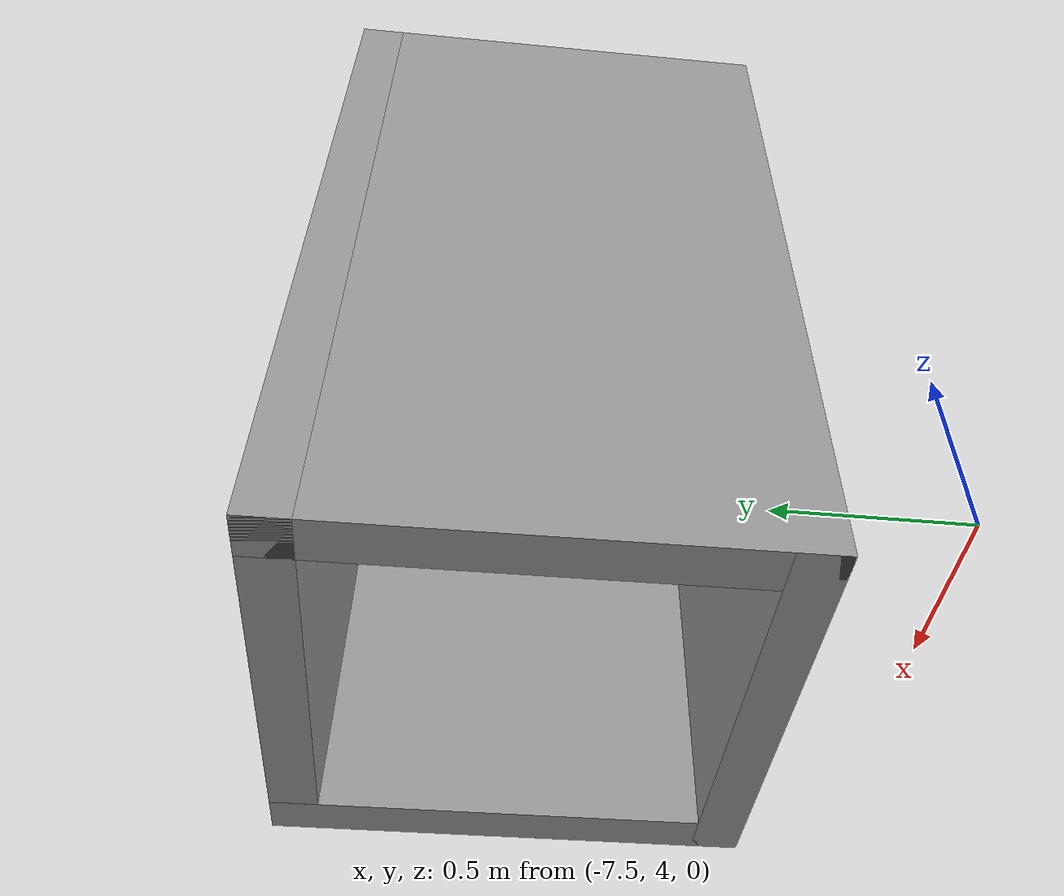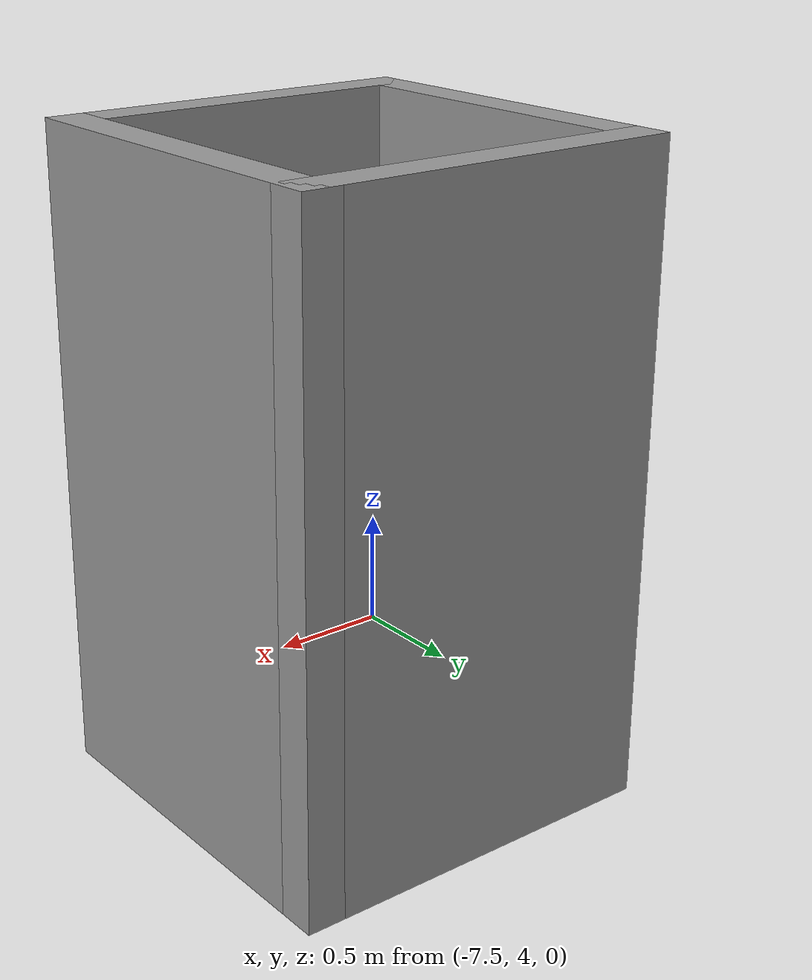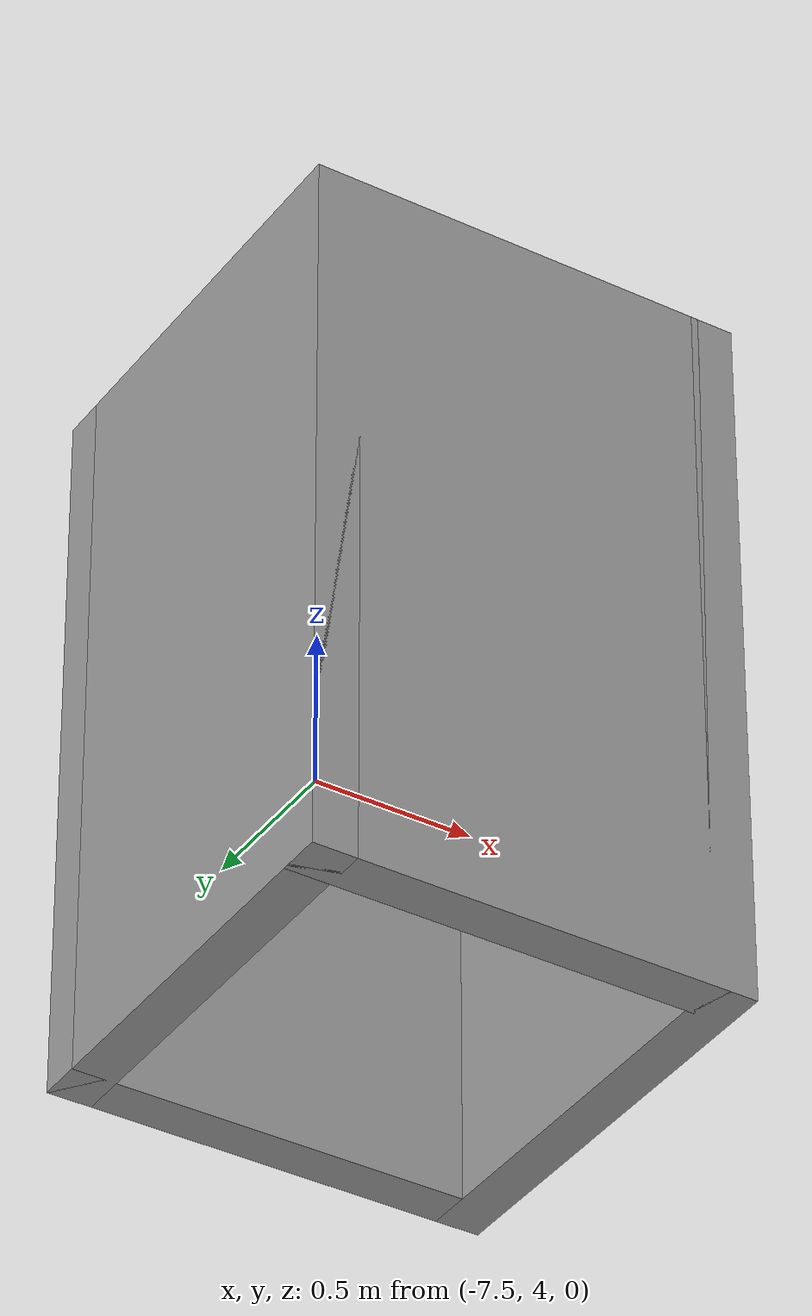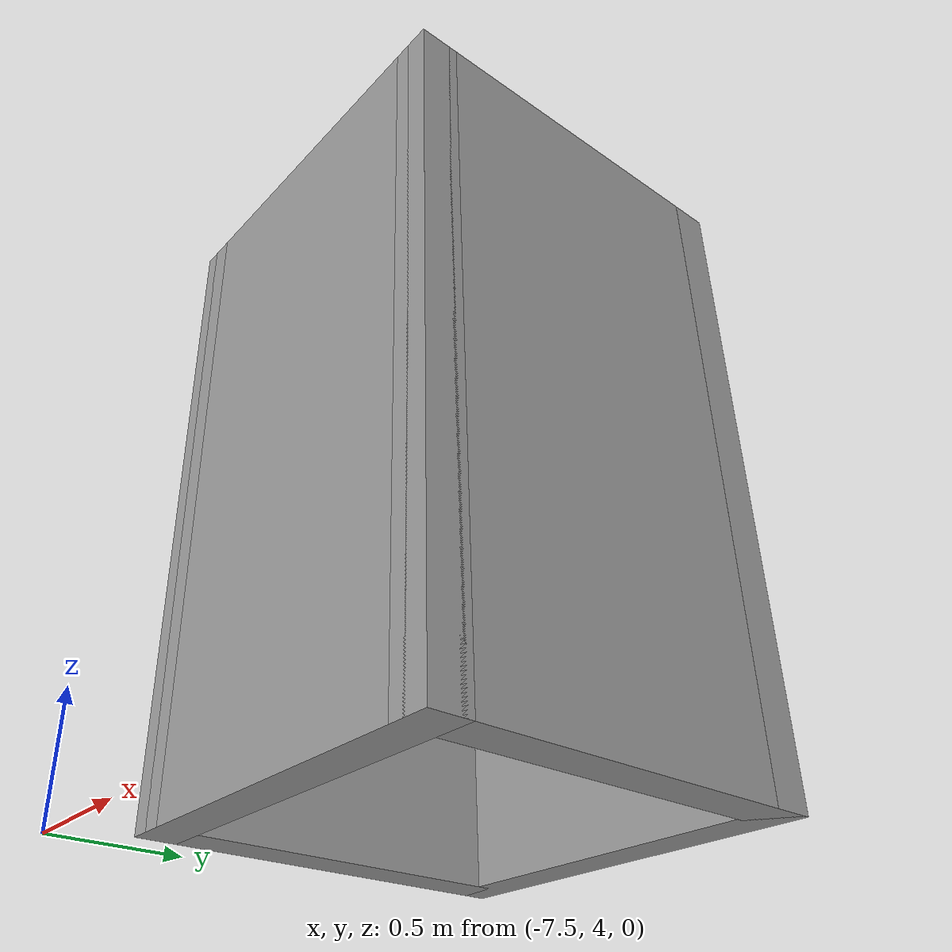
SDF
<?xml version='1.0'?>
<sdf version='1.7'>
  <model name='pillar_1_2'>

    <pose>-5.0 5.0 0.0 0 0 0</pose>

    <link name='Wall_10'>
      <collision name='Wall_10_Collision'>
        <geometry>
          <box>
            <size>1.5 0.15 2.5</size>
          </box>
        </geometry>
        <pose>0 0 1.25 0 -0 0</pose>
      </collision>
      <visual name='Wall_10_Visual'>
        <pose>0 0 1.25 0 -0 0</pose>
        <geometry>
          <box>
            <size>1.5 0.15 2.5</size>
          </box>
        </geometry>
        <material>
          <script>
            <uri>file://media/materials/scripts/gazebo.material</uri>
            <name>Gazebo/Grey</name>
          </script>
          <ambient>1 1 1 1</ambient>
        </material>
        <meta>
          <layer>0</layer>
        </meta>
      </visual>
      <pose>-1.608 0.675 0 0 -0 3.14159</pose>
    </link>

    <link name='Wall_7'>
      <collision name='Wall_7_Collision'>
        <geometry>
          <box>
            <size>1.5 0.15 2.5</size>
          </box>
        </geometry>
        <pose>0 0 1.25 0 -0 0</pose>
      </collision>
      <visual name='Wall_7_Visual'>
        <pose>0 0 1.25 0 -0 0</pose>
        <geometry>
          <box>
            <size>1.5 0.15 2.5</size>
          </box>
        </geometry>
        <material>
          <script>
            <uri>file://media/materials/scripts/gazebo.material</uri>
            <name>Gazebo/Grey</name>
          </script>
          <ambient>1 1 1 1</ambient>
        </material>
        <meta>
          <layer>0</layer>
        </meta>
      </visual>
      <pose>-2.283 0 0 0 -0 -1.5708</pose>
    </link>

    <link name='Wall_8'>
      <collision name='Wall_8_Collision'>
        <geometry>
          <box>
            <size>1.5 0.15 2.5</size>
          </box>
        </geometry>
        <pose>0 0 1.25 0 -0 0</pose>
      </collision>
      <visual name='Wall_8_Visual'>
        <pose>0 0 1.25 0 -0 0</pose>
        <geometry>
          <box>
            <size>1.5 0.15 2.5</size>
          </box>
        </geometry>
        <material>
          <script>
            <uri>file://media/materials/scripts/gazebo.material</uri>
            <name>Gazebo/Grey</name>
          </script>
          <ambient>1 1 1 1</ambient>
        </material>
        <meta>
          <layer>0</layer>
        </meta>
      </visual>
      <pose>-1.608 -0.675 0 0 -0 0</pose>
    </link>

    <link name='Wall_9'>
      <collision name='Wall_9_Collision'>
        <geometry>
          <box>
            <size>1.5 0.15 2.5</size>
          </box>
        </geometry>
        <pose>0 0 1.25 0 -0 0</pose>
      </collision>
      <visual name='Wall_9_Visual'>
        <pose>0 0 1.25 0 -0 0</pose>
        <geometry>
          <box>
            <size>1.5 0.15 2.5</size>
          </box>
        </geometry>
        <material>
          <script>
            <uri>file://media/materials/scripts/gazebo.material</uri>
            <name>Gazebo/Grey</name>
          </script>
          <ambient>1 1 1 1</ambient>
        </material>
        <meta>
          <layer>0</layer>
        </meta>
      </visual>
      <pose>-0.933002 0 0 0 -0 1.5708</pose>
    </link>

    <static>1</static>

  </model>
</sdf>
